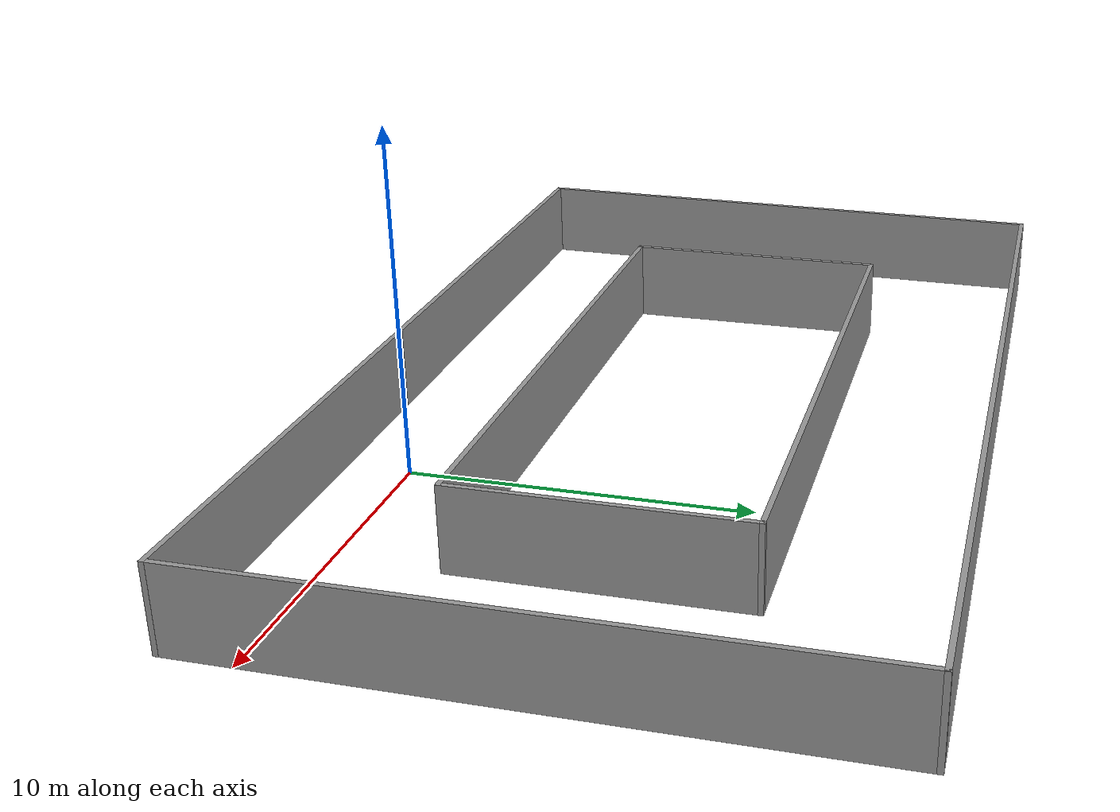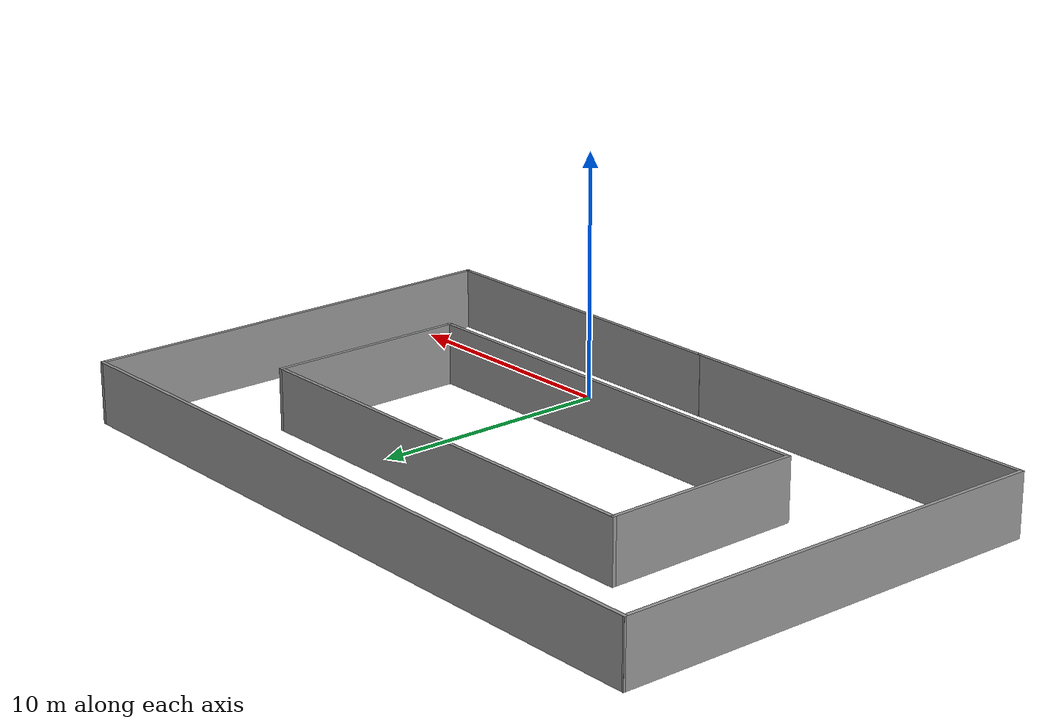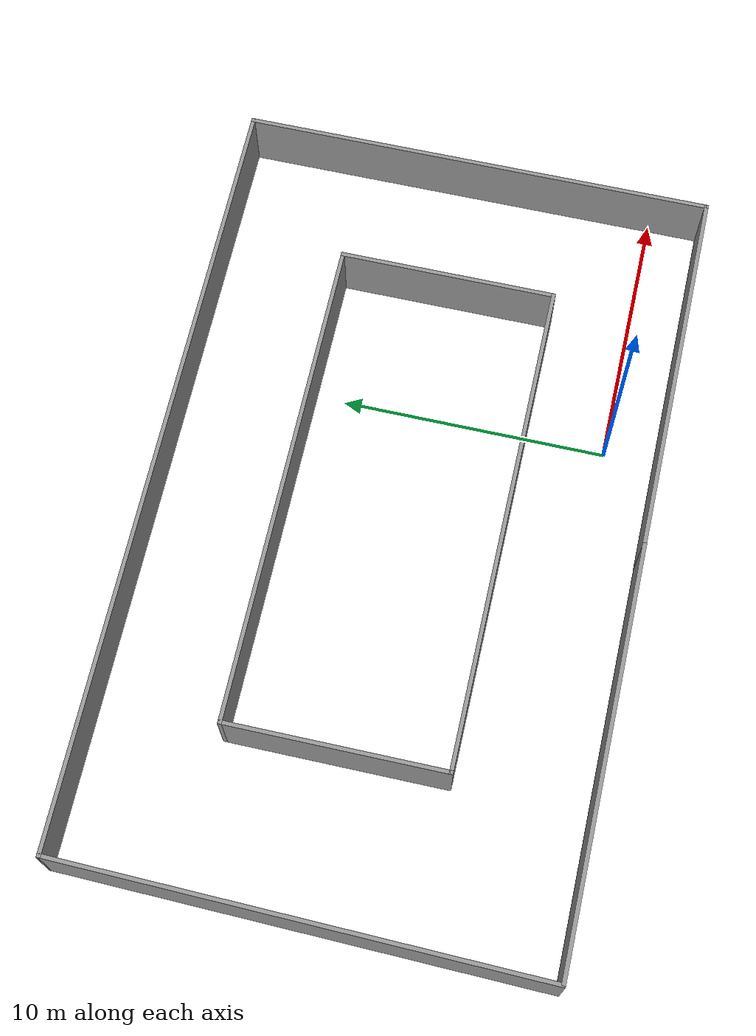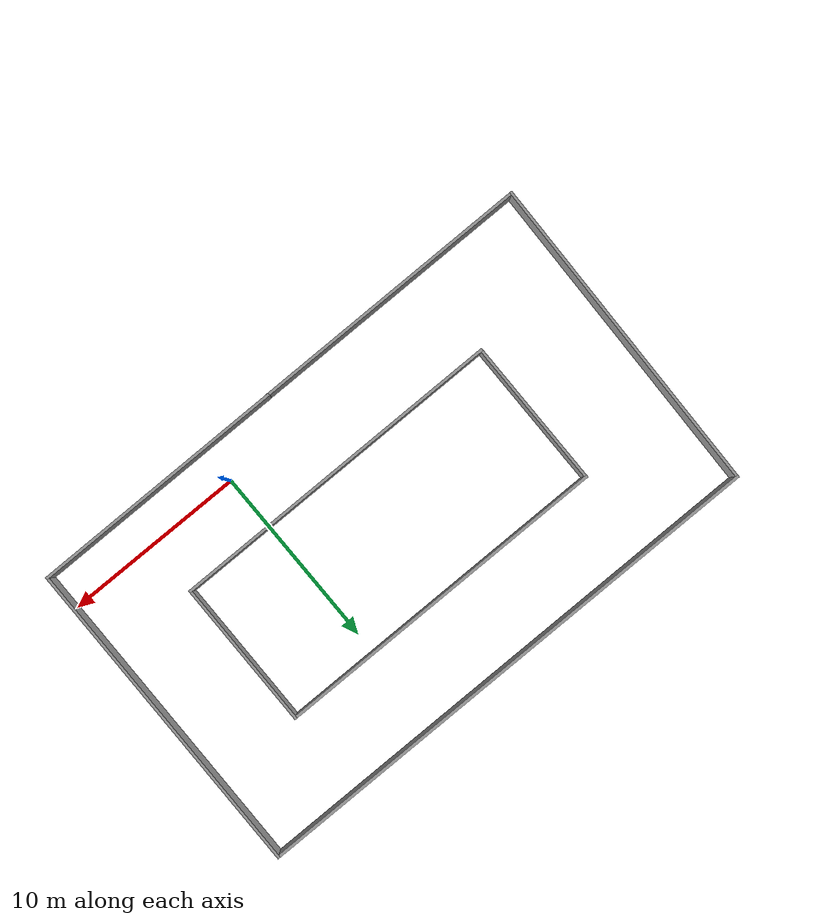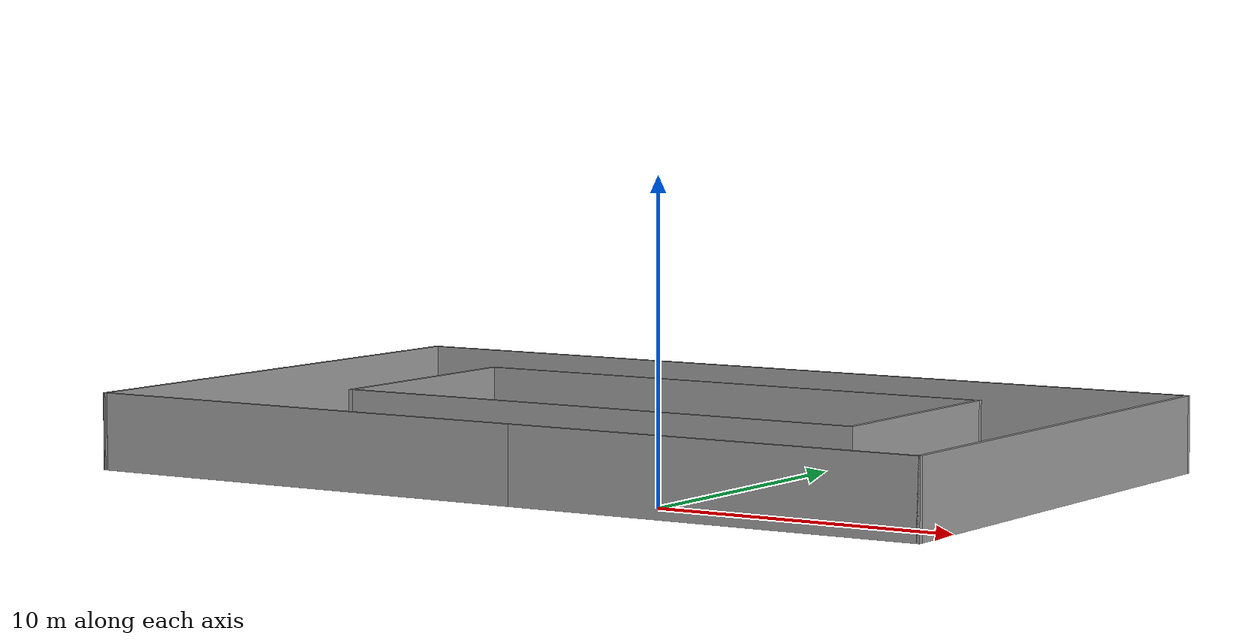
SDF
<?xml version='1.0'?>
<sdf version='1.6'>
  <model name='racetrack'>
    <pose frame=''>-4.91864 6.96584 0 0 -0 0</pose>
    <link name='Wall_20'>
      <collision name='Wall_20_Collision'>
        <geometry>
          <box>
            <size>14.25 0.15 2.5</size>
          </box>
        </geometry>
        <pose frame=''>0 0 1.25 0 -0 0</pose>
      </collision>
      <visual name='Wall_20_Visual'>
        <pose frame=''>0 0 1.25 0 -0 0</pose>
        <geometry>
          <box>
            <size>14.25 0.15 2.5</size>
          </box>
        </geometry>
        <material>
          <script>
            <uri>file://media/materials/scripts/gazebo.material</uri>
            <name>Gazebo/Grey</name>
          </script>
          <ambient>1 1 1 1</ambient>
        </material>
      </visual>
      <pose frame=''>7.79964 -8.92098 0 0 -0 0</pose>
    </link>
    <link name='Wall_21'>
      <collision name='Wall_21_Collision'>
        <geometry>
          <box>
            <size>18 0.15 2.5</size>
          </box>
        </geometry>
        <pose frame=''>0 0 1.25 0 -0 0</pose>
      </collision>
      <visual name='Wall_21_Visual'>
        <pose frame=''>0 0 1.25 0 -0 0</pose>
        <geometry>
          <box>
            <size>18 0.15 2.5</size>
          </box>
        </geometry>
        <material>
          <script>
            <uri>file://media/materials/scripts/gazebo.material</uri>
            <name>Gazebo/Grey</name>
          </script>
          <ambient>1 1 1 1</ambient>
        </material>
      </visual>
      <pose frame=''>14.8496 0.004017 0 0 -0 1.5708</pose>
    </link>
    <link name='Wall_22'>
      <collision name='Wall_22_Collision'>
        <geometry>
          <box>
            <size>29.5 0.15 2.5</size>
          </box>
        </geometry>
        <pose frame=''>0 0 1.25 0 -0 0</pose>
      </collision>
      <visual name='Wall_22_Visual'>
        <pose frame=''>0 0 1.25 0 -0 0</pose>
        <geometry>
          <box>
            <size>29.5 0.15 2.5</size>
          </box>
        </geometry>
        <material>
          <script>
            <uri>file://media/materials/scripts/gazebo.material</uri>
            <name>Gazebo/Grey</name>
          </script>
          <ambient>1 1 1 1</ambient>
        </material>
      </visual>
      <pose frame=''>0.174636 8.92902 0 0 -0 3.14159</pose>
    </link>
    <link name='Wall_23'>
      <collision name='Wall_23_Collision'>
        <geometry>
          <box>
            <size>18.0114 0.15 2.5</size>
          </box>
        </geometry>
        <pose frame=''>0 0 1.25 0 -0 0</pose>
      </collision>
      <visual name='Wall_23_Visual'>
        <pose frame=''>0 0 1.25 0 -0 0</pose>
        <geometry>
          <box>
            <size>18.0114 0.15 2.5</size>
          </box>
        </geometry>
        <material>
          <script>
            <uri>file://media/materials/scripts/gazebo.material</uri>
            <name>Gazebo/Grey</name>
          </script>
          <ambient>1 1 1 1</ambient>
        </material>
      </visual>
      <pose frame=''>-14.6743 0 0 0 0 -1.59027</pose>
    </link>
    <link name='Wall_24'>
      <collision name='Wall_24_Collision'>
        <geometry>
          <box>
            <size>15.75 0.15 2.5</size>
          </box>
        </geometry>
        <pose frame=''>0 0 1.25 0 -0 0</pose>
      </collision>
      <visual name='Wall_24_Visual'>
        <pose frame=''>0 0 1.25 0 -0 0</pose>
        <geometry>
          <box>
            <size>15.75 0.15 2.5</size>
          </box>
        </geometry>
        <material>
          <script>
            <uri>file://media/materials/scripts/gazebo.material</uri>
            <name>Gazebo/Grey</name>
          </script>
          <ambient>1 1 1 1</ambient>
        </material>
      </visual>
      <pose frame=''>-7.03307 -8.92902 0 0 -0 0</pose>
    </link>
    <link name='Wall_26'>
      <collision name='Wall_26_Collision'>
        <geometry>
          <box>
            <size>18.75 0.15 2.5</size>
          </box>
        </geometry>
        <pose frame=''>0 0 1.25 0 -0 0</pose>
      </collision>
      <visual name='Wall_26_Visual'>
        <pose frame=''>0 0 1.25 0 -0 0</pose>
        <geometry>
          <box>
            <size>18.75 0.15 2.5</size>
          </box>
        </geometry>
        <material>
          <script>
            <uri>file://media/materials/scripts/gazebo.material</uri>
            <name>Gazebo/Grey</name>
          </script>
          <ambient>1 1 1 1</ambient>
        </material>
      </visual>
      <pose frame=''>0.535247 -3.92041 0 0 -0 0</pose>
    </link>
    <link name='Wall_27'>
      <collision name='Wall_27_Collision'>
        <geometry>
          <box>
            <size>8.25 0.15 2.5</size>
          </box>
        </geometry>
        <pose frame=''>0 0 1.25 0 -0 0</pose>
      </collision>
      <visual name='Wall_27_Visual'>
        <pose frame=''>0 0 1.25 0 -0 0</pose>
        <geometry>
          <box>
            <size>8.25 0.15 2.5</size>
          </box>
        </geometry>
        <material>
          <script>
            <uri>file://media/materials/scripts/gazebo.material</uri>
            <name>Gazebo/Grey</name>
          </script>
          <ambient>1 1 1 1</ambient>
        </material>
      </visual>
      <pose frame=''>9.83525 0.129591 0 0 -0 1.5708</pose>
    </link>
    <link name='Wall_28'>
      <collision name='Wall_28_Collision'>
        <geometry>
          <box>
            <size>18.75 0.15 2.5</size>
          </box>
        </geometry>
        <pose frame=''>0 0 1.25 0 -0 0</pose>
      </collision>
      <visual name='Wall_28_Visual'>
        <pose frame=''>0 0 1.25 0 -0 0</pose>
        <geometry>
          <box>
            <size>18.75 0.15 2.5</size>
          </box>
        </geometry>
        <material>
          <script>
            <uri>file://media/materials/scripts/gazebo.material</uri>
            <name>Gazebo/Grey</name>
          </script>
          <ambient>1 1 1 1</ambient>
        </material>
      </visual>
      <pose frame=''>0.535247 4.17959 0 0 -0 3.14159</pose>
    </link>
    <link name='Wall_29'>
      <collision name='Wall_29_Collision'>
        <geometry>
          <box>
            <size>8.25 0.15 2.5</size>
          </box>
        </geometry>
        <pose frame=''>0 0 1.25 0 -0 0</pose>
      </collision>
      <visual name='Wall_29_Visual'>
        <pose frame=''>0 0 1.25 0 -0 0</pose>
        <geometry>
          <box>
            <size>8.25 0.15 2.5</size>
          </box>
        </geometry>
        <material>
          <script>
            <uri>file://media/materials/scripts/gazebo.material</uri>
            <name>Gazebo/Grey</name>
          </script>
          <ambient>1 1 1 1</ambient>
        </material>
      </visual>
      <pose frame=''>-8.76475 0.129591 0 0 0 -1.5708</pose>
    </link>
    <static>1</static>
  </model>
</sdf>
